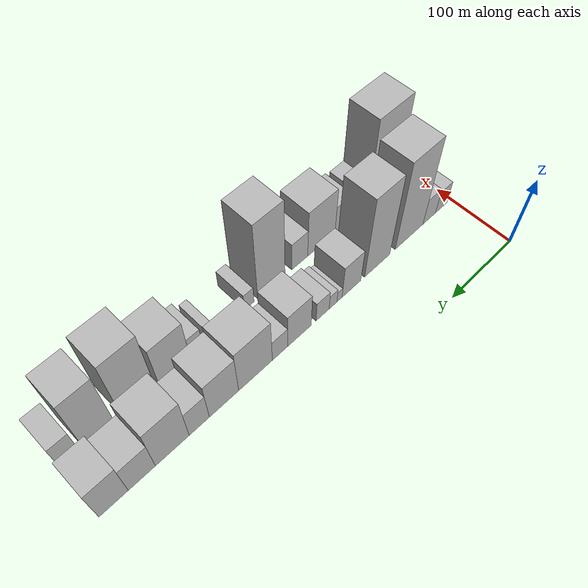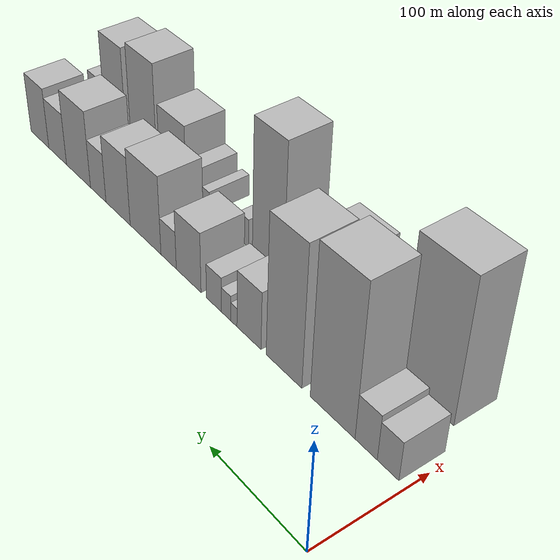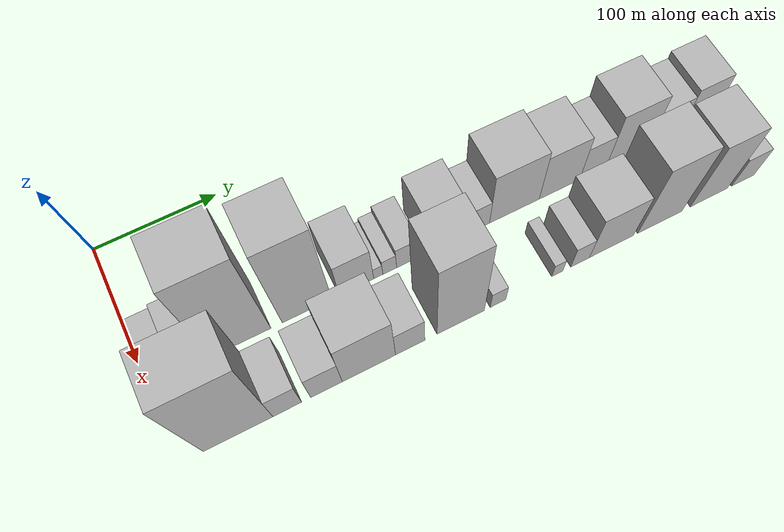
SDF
<sdf version="1.6">
 <world name="default">
  <model name="building_15">
   <static>1</static>
   <pose>100.0000 17.3665 0 0.000000 0.000000 0.000000</pose>
   <link name="link">
    <pose>0 0 18.00 0 0 0</pose>
    <collision name="collision"><geometry><box><size>40.0000 20.4907 36.0000</size></box></geometry></collision>
    <visual name="visual">
     <cast_shadows>0</cast_shadows>
     <geometry><box><size>40.0000 20.4907 36.0000</size></box></geometry>
     <material>
      <script>
       <uri>model://HANNAS_wall/materials/scripts</uri>
       <uri>model://HANNAS_wall/materials/textures</uri>
       <name>vrc/HANNAS_wall</name>
      </script>
     </material>
    </visual>
   </link>
  </model>
  <model name="building_16">
   <static>1</static>
   <pose>100.0000 38.4978 0 0.000000 0.000000 0.000000</pose>
   <link name="link">
    <pose>0 0 21.00 0 0 0</pose>
    <collision name="collision"><geometry><box><size>40.0000 21.7718 42.0000</size></box></geometry></collision>
    <visual name="visual">
     <cast_shadows>0</cast_shadows>
     <geometry><box><size>40.0000 21.7718 42.0000</size></box></geometry>
     <material>
      <script>
       <uri>model://HANNAS_wall/materials/scripts</uri>
       <uri>model://HANNAS_wall/materials/textures</uri>
       <name>vrc/HANNAS_wall</name>
      </script>
     </material>
    </visual>
   </link>
  </model>
  <model name="building_17">
   <static>1</static>
   <pose>100.0000 72.5670 0 0.000000 0.000000 0.000000</pose>
   <link name="link">
    <pose>0 0 69.00 0 0 0</pose>
    <collision name="collision"><geometry><box><size>40.0000 46.3667 138.0000</size></box></geometry></collision>
    <visual name="visual">
     <cast_shadows>0</cast_shadows>
     <geometry><box><size>40.0000 46.3667 138.0000</size></box></geometry>
     <material>
      <script>
       <uri>model://HANNAS_wall/materials/scripts</uri>
       <uri>model://HANNAS_wall/materials/textures</uri>
       <name>vrc/HANNAS_wall</name>
      </script>
     </material>
    </visual>
   </link>
  </model>
  <model name="building_18">
   <static>1</static>
   <pose>100.0000 124.7555 0 0.000000 0.000000 0.000000</pose>
   <link name="link">
    <pose>0 0 64.50 0 0 0</pose>
    <collision name="collision"><geometry><box><size>40.0000 40.0102 129.0000</size></box></geometry></collision>
    <visual name="visual">
     <cast_shadows>0</cast_shadows>
     <geometry><box><size>40.0000 40.0102 129.0000</size></box></geometry>
     <material>
      <script>
       <uri>model://HANNAS_wall/materials/scripts</uri>
       <uri>model://HANNAS_wall/materials/textures</uri>
       <name>vrc/HANNAS_wall</name>
      </script>
     </material>
    </visual>
   </link>
  </model>
  <model name="building_19">
   <static>1</static>
   <pose>100.0000 165.0707 0 0.000000 0.000000 0.000000</pose>
   <link name="link">
    <pose>0 0 27.00 0 0 0</pose>
    <collision name="collision"><geometry><box><size>40.0000 28.6201 54.0000</size></box></geometry></collision>
    <visual name="visual">
     <cast_shadows>0</cast_shadows>
     <geometry><box><size>40.0000 28.6201 54.0000</size></box></geometry>
     <material>
      <script>
       <uri>model://HANNAS_wall/materials/scripts</uri>
       <uri>model://HANNAS_wall/materials/textures</uri>
       <name>vrc/HANNAS_wall</name>
      </script>
     </material>
    </visual>
   </link>
  </model>
  <model name="building_20">
   <static>1</static>
   <pose>100.0000 183.1911 0 0.000000 0.000000 0.000000</pose>
   <link name="link">
    <pose>0 0 9.00 0 0 0</pose>
    <collision name="collision"><geometry><box><size>40.0000 7.6208 18.0000</size></box></geometry></collision>
    <visual name="visual">
     <cast_shadows>0</cast_shadows>
     <geometry><box><size>40.0000 7.6208 18.0000</size></box></geometry>
     <material>
      <script>
       <uri>model://HANNAS_wall/materials/scripts</uri>
       <uri>model://HANNAS_wall/materials/textures</uri>
       <name>vrc/HANNAS_wall</name>
      </script>
     </material>
    </visual>
   </link>
  </model>
  <model name="building_21">
   <static>1</static>
   <pose>100.0000 192.7777 0 0.000000 0.000000 0.000000</pose>
   <link name="link">
    <pose>0 0 12.00 0 0 0</pose>
    <collision name="collision"><geometry><box><size>40.0000 11.5524 24.0000</size></box></geometry></collision>
    <visual name="visual">
     <cast_shadows>0</cast_shadows>
     <geometry><box><size>40.0000 11.5524 24.0000</size></box></geometry>
     <material>
      <script>
       <uri>model://HANNAS_wall/materials/scripts</uri>
       <uri>model://HANNAS_wall/materials/textures</uri>
       <name>vrc/HANNAS_wall</name>
      </script>
     </material>
    </visual>
   </link>
  </model>
  <model name="building_22">
   <static>1</static>
   <pose>100.0000 208.0630 0 0.000000 0.000000 0.000000</pose>
   <link name="link">
    <pose>0 0 16.50 0 0 0</pose>
    <collision name="collision"><geometry><box><size>40.0000 19.0182 33.0000</size></box></geometry></collision>
    <visual name="visual">
     <cast_shadows>0</cast_shadows>
     <geometry><box><size>40.0000 19.0182 33.0000</size></box></geometry>
     <material>
      <script>
       <uri>model://HANNAS_wall/materials/scripts</uri>
       <uri>model://HANNAS_wall/materials/textures</uri>
       <name>vrc/HANNAS_wall</name>
      </script>
     </material>
    </visual>
   </link>
  </model>
  <model name="building_23">
   <static>1</static>
   <pose>100.0000 241.0356 0 0.000000 0.000000 0.000000</pose>
   <link name="link">
    <pose>0 0 28.50 0 0 0</pose>
    <collision name="collision"><geometry><box><size>40.0000 32.9269 57.0000</size></box></geometry></collision>
    <visual name="visual">
     <cast_shadows>0</cast_shadows>
     <geometry><box><size>40.0000 32.9269 57.0000</size></box></geometry>
     <material>
      <script>
       <uri>model://HANNAS_wall/materials/scripts</uri>
       <uri>model://HANNAS_wall/materials/textures</uri>
       <name>vrc/HANNAS_wall</name>
      </script>
     </material>
    </visual>
   </link>
  </model>
  <model name="building_24">
   <static>1</static>
   <pose>100.0000 268.0763 0 0.000000 0.000000 0.000000</pose>
   <link name="link">
    <pose>0 0 18.00 0 0 0</pose>
    <collision name="collision"><geometry><box><size>40.0000 21.1546 36.0000</size></box></geometry></collision>
    <visual name="visual">
     <cast_shadows>0</cast_shadows>
     <geometry><box><size>40.0000 21.1546 36.0000</size></box></geometry>
     <material>
      <script>
       <uri>model://HANNAS_wall/materials/scripts</uri>
       <uri>model://HANNAS_wall/materials/textures</uri>
       <name>vrc/HANNAS_wall</name>
      </script>
     </material>
    </visual>
   </link>
  </model>
  <model name="building_25">
   <static>1</static>
   <pose>100.0000 300.8559 0 0.000000 0.000000 0.000000</pose>
   <link name="link">
    <pose>0 0 37.50 0 0 0</pose>
    <collision name="collision"><geometry><box><size>40.0000 44.4047 75.0000</size></box></geometry></collision>
    <visual name="visual">
     <cast_shadows>0</cast_shadows>
     <geometry><box><size>40.0000 44.4047 75.0000</size></box></geometry>
     <material>
      <script>
       <uri>model://HANNAS_wall/materials/scripts</uri>
       <uri>model://HANNAS_wall/materials/textures</uri>
       <name>vrc/HANNAS_wall</name>
      </script>
     </material>
    </visual>
   </link>
  </model>
  <model name="building_26">
   <static>1</static>
   <pose>100.0000 341.5519 0 0.000000 0.000000 0.000000</pose>
   <link name="link">
    <pose>0 0 33.00 0 0 0</pose>
    <collision name="collision"><geometry><box><size>40.0000 36.9872 66.0000</size></box></geometry></collision>
    <visual name="visual">
     <cast_shadows>0</cast_shadows>
     <geometry><box><size>40.0000 36.9872 66.0000</size></box></geometry>
     <material>
      <script>
       <uri>model://HANNAS_wall/materials/scripts</uri>
       <uri>model://HANNAS_wall/materials/textures</uri>
       <name>vrc/HANNAS_wall</name>
      </script>
     </material>
    </visual>
   </link>
  </model>
  <model name="building_27">
   <static>1</static>
   <pose>100.0000 372.3275 0 0.000000 0.000000 0.000000</pose>
   <link name="link">
    <pose>0 0 24.00 0 0 0</pose>
    <collision name="collision"><geometry><box><size>40.0000 24.5641 48.0000</size></box></geometry></collision>
    <visual name="visual">
     <cast_shadows>0</cast_shadows>
     <geometry><box><size>40.0000 24.5641 48.0000</size></box></geometry>
     <material>
      <script>
       <uri>model://HANNAS_wall/materials/scripts</uri>
       <uri>model://HANNAS_wall/materials/textures</uri>
       <name>vrc/HANNAS_wall</name>
      </script>
     </material>
    </visual>
   </link>
  </model>
  <model name="building_28">
   <static>1</static>
   <pose>100.0000 404.4426 0 0.000000 0.000000 0.000000</pose>
   <link name="link">
    <pose>0 0 37.50 0 0 0</pose>
    <collision name="collision"><geometry><box><size>40.0000 39.6660 75.0000</size></box></geometry></collision>
    <visual name="visual">
     <cast_shadows>0</cast_shadows>
     <geometry><box><size>40.0000 39.6660 75.0000</size></box></geometry>
     <material>
      <script>
       <uri>model://HANNAS_wall/materials/scripts</uri>
       <uri>model://HANNAS_wall/materials/textures</uri>
       <name>vrc/HANNAS_wall</name>
      </script>
     </material>
    </visual>
   </link>
  </model>
  <model name="building_29">
   <static>1</static>
   <pose>100.0000 439.5556 0 0.000000 0.000000 0.000000</pose>
   <link name="link">
    <pose>0 0 25.50 0 0 0</pose>
    <collision name="collision"><geometry><box><size>40.0000 30.5601 51.0000</size></box></geometry></collision>
    <visual name="visual">
     <cast_shadows>0</cast_shadows>
     <geometry><box><size>40.0000 30.5601 51.0000</size></box></geometry>
     <material>
      <script>
       <uri>model://HANNAS_wall/materials/scripts</uri>
       <uri>model://HANNAS_wall/materials/textures</uri>
       <name>vrc/HANNAS_wall</name>
      </script>
     </material>
    </visual>
   </link>
  </model>
  <model name="building_30">
   <static>1</static>
   <pose>100.0000 470.7712 0 0.000000 0.000000 0.000000</pose>
   <link name="link">
    <pose>0 0 30.00 0 0 0</pose>
    <collision name="collision"><geometry><box><size>40.0000 31.8711 60.0000</size></box></geometry></collision>
    <visual name="visual">
     <cast_shadows>0</cast_shadows>
     <geometry><box><size>40.0000 31.8711 60.0000</size></box></geometry>
     <material>
      <script>
       <uri>model://HANNAS_wall/materials/scripts</uri>
       <uri>model://HANNAS_wall/materials/textures</uri>
       <name>vrc/HANNAS_wall</name>
      </script>
     </material>
    </visual>
   </link>
  </model>
  <model name="building_44">
   <static>1</static>
   <pose>160.0000 45.5897 0 0.000000 0.000000 0.000000</pose>
   <link name="link">
    <pose>0 0 66.00 0 0 0</pose>
    <collision name="collision"><geometry><box><size>40.0000 52.1244 132.0000</size></box></geometry></collision>
    <visual name="visual">
     <cast_shadows>0</cast_shadows>
     <geometry><box><size>40.0000 52.1244 132.0000</size></box></geometry>
     <material>
      <script>
       <uri>model://HANNAS_wall/materials/scripts</uri>
       <uri>model://HANNAS_wall/materials/textures</uri>
       <name>vrc/HANNAS_wall</name>
      </script>
     </material>
    </visual>
   </link>
  </model>
  <model name="building_45">
   <static>1</static>
   <pose>160.0000 82.6738 0 0.000000 0.000000 0.000000</pose>
   <link name="link">
    <pose>0 0 21.00 0 0 0</pose>
    <collision name="collision"><geometry><box><size>40.0000 22.0439 42.0000</size></box></geometry></collision>
    <visual name="visual">
     <cast_shadows>0</cast_shadows>
     <geometry><box><size>40.0000 22.0439 42.0000</size></box></geometry>
     <material>
      <script>
       <uri>model://HANNAS_wall/materials/scripts</uri>
       <uri>model://HANNAS_wall/materials/textures</uri>
       <name>vrc/HANNAS_wall</name>
      </script>
     </material>
    </visual>
   </link>
  </model>
  <model name="building_46">
   <static>1</static>
   <pose>160.0000 113.0289 0 0.000000 0.000000 0.000000</pose>
   <link name="link">
    <pose>0 0 22.50 0 0 0</pose>
    <collision name="collision"><geometry><box><size>40.0000 24.6662 45.0000</size></box></geometry></collision>
    <visual name="visual">
     <cast_shadows>0</cast_shadows>
     <geometry><box><size>40.0000 24.6662 45.0000</size></box></geometry>
     <material>
      <script>
       <uri>model://HANNAS_wall/materials/scripts</uri>
       <uri>model://HANNAS_wall/materials/textures</uri>
       <name>vrc/HANNAS_wall</name>
      </script>
     </material>
    </visual>
   </link>
  </model>
  <model name="building_47">
   <static>1</static>
   <pose>160.0000 146.5552 0 0.000000 0.000000 0.000000</pose>
   <link name="link">
    <pose>0 0 37.50 0 0 0</pose>
    <collision name="collision"><geometry><box><size>40.0000 42.3864 75.0000</size></box></geometry></collision>
    <visual name="visual">
     <cast_shadows>0</cast_shadows>
     <geometry><box><size>40.0000 42.3864 75.0000</size></box></geometry>
     <material>
      <script>
       <uri>model://HANNAS_wall/materials/scripts</uri>
       <uri>model://HANNAS_wall/materials/textures</uri>
       <name>vrc/HANNAS_wall</name>
      </script>
     </material>
    </visual>
   </link>
  </model>
  <model name="building_48">
   <static>1</static>
   <pose>160.0000 179.6316 0 0.000000 0.000000 0.000000</pose>
   <link name="link">
    <pose>0 0 22.50 0 0 0</pose>
    <collision name="collision"><geometry><box><size>40.0000 23.7664 45.0000</size></box></geometry></collision>
    <visual name="visual">
     <cast_shadows>0</cast_shadows>
     <geometry><box><size>40.0000 23.7664 45.0000</size></box></geometry>
     <material>
      <script>
       <uri>model://HANNAS_wall/materials/scripts</uri>
       <uri>model://HANNAS_wall/materials/textures</uri>
       <name>vrc/HANNAS_wall</name>
      </script>
     </material>
    </visual>
   </link>
  </model>
  <model name="building_49">
   <static>1</static>
   <pose>160.0000 221.2124 0 0.000000 0.000000 0.000000</pose>
   <link name="link">
    <pose>0 0 63.00 0 0 0</pose>
    <collision name="collision"><geometry><box><size>40.0000 39.3952 126.0000</size></box></geometry></collision>
    <visual name="visual">
     <cast_shadows>0</cast_shadows>
     <geometry><box><size>40.0000 39.3952 126.0000</size></box></geometry>
     <material>
      <script>
       <uri>model://HANNAS_wall/materials/scripts</uri>
       <uri>model://HANNAS_wall/materials/textures</uri>
       <name>vrc/HANNAS_wall</name>
      </script>
     </material>
    </visual>
   </link>
  </model>
  <model name="building_50">
   <static>1</static>
   <pose>160.0000 252.4981 0 0.000000 0.000000 0.000000</pose>
   <link name="link">
    <pose>0 0 13.50 0 0 0</pose>
    <collision name="collision"><geometry><box><size>40.0000 13.1762 27.0000</size></box></geometry></collision>
    <visual name="visual">
     <cast_shadows>0</cast_shadows>
     <geometry><box><size>40.0000 13.1762 27.0000</size></box></geometry>
     <material>
      <script>
       <uri>model://HANNAS_wall/materials/scripts</uri>
       <uri>model://HANNAS_wall/materials/textures</uri>
       <name>vrc/HANNAS_wall</name>
      </script>
     </material>
    </visual>
   </link>
  </model>
  <model name="building_51">
   <static>1</static>
   <pose>160.0000 303.6340 0 0.000000 0.000000 0.000000</pose>
   <link name="link">
    <pose>0 0 10.50 0 0 0</pose>
    <collision name="collision"><geometry><box><size>40.0000 9.6985 21.0000</size></box></geometry></collision>
    <visual name="visual">
     <cast_shadows>0</cast_shadows>
     <geometry><box><size>40.0000 9.6985 21.0000</size></box></geometry>
     <material>
      <script>
       <uri>model://HANNAS_wall/materials/scripts</uri>
       <uri>model://HANNAS_wall/materials/textures</uri>
       <name>vrc/HANNAS_wall</name>
      </script>
     </material>
    </visual>
   </link>
  </model>
  <model name="building_52">
   <static>1</static>
   <pose>160.0000 323.7401 0 0.000000 0.000000 0.000000</pose>
   <link name="link">
    <pose>0 0 16.50 0 0 0</pose>
    <collision name="collision"><geometry><box><size>40.0000 16.5138 33.0000</size></box></geometry></collision>
    <visual name="visual">
     <cast_shadows>0</cast_shadows>
     <geometry><box><size>40.0000 16.5138 33.0000</size></box></geometry>
     <material>
      <script>
       <uri>model://HANNAS_wall/materials/scripts</uri>
       <uri>model://HANNAS_wall/materials/textures</uri>
       <name>vrc/HANNAS_wall</name>
      </script>
     </material>
    </visual>
   </link>
  </model>
  <model name="building_53">
   <static>1</static>
   <pose>160.0000 351.7377 0 0.000000 0.000000 0.000000</pose>
   <link name="link">
    <pose>0 0 33.00 0 0 0</pose>
    <collision name="collision"><geometry><box><size>40.0000 39.4812 66.0000</size></box></geometry></collision>
    <visual name="visual">
     <cast_shadows>0</cast_shadows>
     <geometry><box><size>40.0000 39.4812 66.0000</size></box></geometry>
     <material>
      <script>
       <uri>model://HANNAS_wall/materials/scripts</uri>
       <uri>model://HANNAS_wall/materials/textures</uri>
       <name>vrc/HANNAS_wall</name>
      </script>
     </material>
    </visual>
   </link>
  </model>
  <model name="building_54">
   <static>1</static>
   <pose>160.0000 395.8533 0 0.000000 0.000000 0.000000</pose>
   <link name="link">
    <pose>0 0 51.00 0 0 0</pose>
    <collision name="collision"><geometry><box><size>40.0000 40.7501 102.0000</size></box></geometry></collision>
    <visual name="visual">
     <cast_shadows>0</cast_shadows>
     <geometry><box><size>40.0000 40.7501 102.0000</size></box></geometry>
     <material>
      <script>
       <uri>model://HANNAS_wall/materials/scripts</uri>
       <uri>model://HANNAS_wall/materials/textures</uri>
       <name>vrc/HANNAS_wall</name>
      </script>
     </material>
    </visual>
   </link>
  </model>
  <model name="building_55">
   <static>1</static>
   <pose>160.0000 441.7702 0 0.000000 0.000000 0.000000</pose>
   <link name="link">
    <pose>0 0 46.50 0 0 0</pose>
    <collision name="collision"><geometry><box><size>40.0000 35.0836 93.0000</size></box></geometry></collision>
    <visual name="visual">
     <cast_shadows>0</cast_shadows>
     <geometry><box><size>40.0000 35.0836 93.0000</size></box></geometry>
     <material>
      <script>
       <uri>model://HANNAS_wall/materials/scripts</uri>
       <uri>model://HANNAS_wall/materials/textures</uri>
       <name>vrc/HANNAS_wall</name>
      </script>
     </material>
    </visual>
   </link>
  </model>
  <model name="building_56">
   <static>1</static>
   <pose>160.0000 474.1163 0 0.000000 0.000000 0.000000</pose>
   <link name="link">
    <pose>0 0 21.00 0 0 0</pose>
    <collision name="collision"><geometry><box><size>40.0000 21.6085 42.0000</size></box></geometry></collision>
    <visual name="visual">
     <cast_shadows>0</cast_shadows>
     <geometry><box><size>40.0000 21.6085 42.0000</size></box></geometry>
     <material>
      <script>
       <uri>model://HANNAS_wall/materials/scripts</uri>
       <uri>model://HANNAS_wall/materials/textures</uri>
       <name>vrc/HANNAS_wall</name>
      </script>
     </material>
    </visual>
   </link>
  </model>
 </world>
</sdf>
